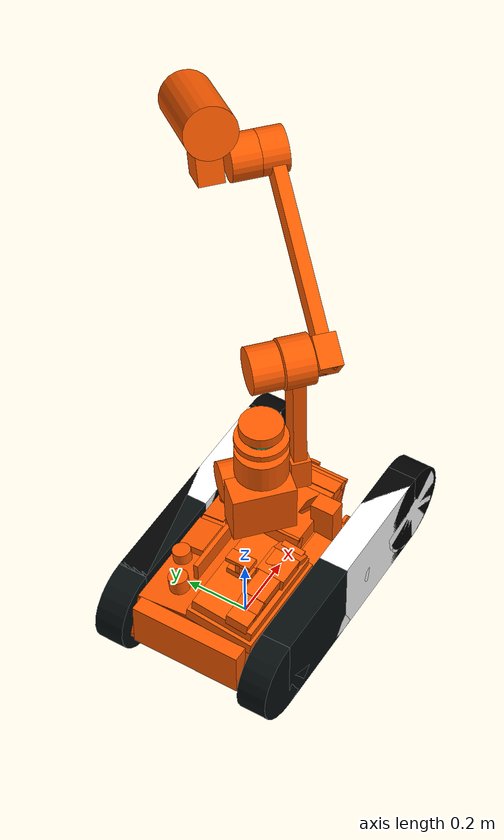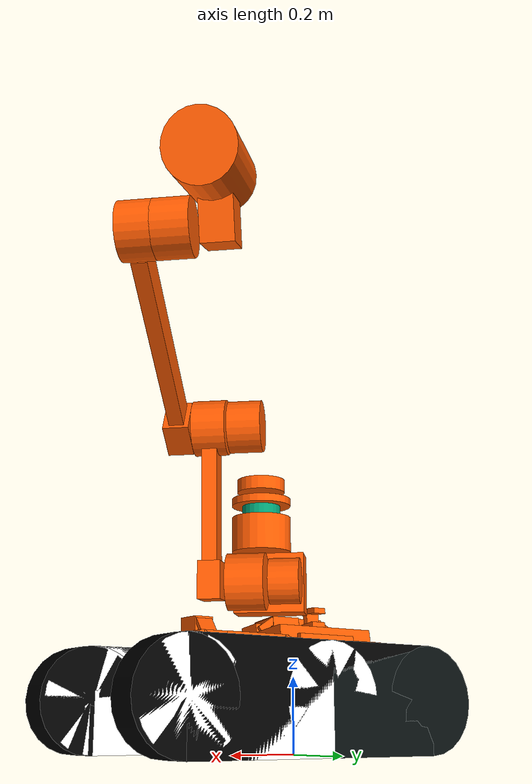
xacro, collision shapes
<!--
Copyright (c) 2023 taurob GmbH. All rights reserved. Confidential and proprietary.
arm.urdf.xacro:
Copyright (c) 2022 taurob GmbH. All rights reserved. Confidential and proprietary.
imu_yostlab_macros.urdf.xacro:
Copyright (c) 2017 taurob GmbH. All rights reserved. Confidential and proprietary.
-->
<?xml version="1.0"?>

<robot name="taurob_inspector_longarm" xmlns:xacro="http://www.ros.org/wiki/xacro">

  <!-- [BEGIN] === Arguments === -->
    <xacro:arg name="use_gpu" default="false"/>  <!-- [INFO]: Set use_gpu to false if running on VMWare -->
    <xacro:arg name="use_lidar" default="true" />  <!-- [INFO]: fixed/rotate/placement_rot (test only!) -->
    <xacro:arg name="operation_mode" default="physical" />  <!-- [INFO]: Simulation/Physical -->
    <xacro:arg name="use_imu" default="true" />
    <xacro:arg name="use_cameras" default="true" />
    <xacro:arg name="collision_model" default="simple" />
    <xacro:arg name="odomTopic" default="odom" />
    <xacro:arg name="publishTF" default="1" />
    <xacro:arg name="velodyneTopic" default="/velodyne_points" />
    <xacro:arg name="velodyneHz" default="20" />
    <xacro:arg name="use_gpu" default="false" />

    <!-- [BEGIN] === Properties === -->
    <xacro:property name="use_gpu" value="$(arg use_gpu)" />
    <xacro:property name="use_lidar" value="$(arg use_lidar)" />
    <xacro:property name="operation_mode" value="$(arg operation_mode)" />
    <xacro:property name="use_imu" value="$(arg use_imu)" />
    <xacro:property name="use_cameras" value="$(arg use_cameras)" />
    <xacro:property name="collision_model" value="$(arg collision_model)" />
    <xacro:property name="odomTopic" value="$(arg odomTopic)" />
    <xacro:property name="velodyneTopic" value="$(arg velodyneTopic)" />
    <xacro:property name="velodyneHz" value="$(arg velodyneHz)" />
    <xacro:property name="publishTF" value="$(arg publishTF)" />
    <xacro:property name="M_PI" value="3.14159" />

    <!-- [BEGIN] === Include section === -->
    <xacro:include filename="$(find taurob_robots_description)/urdf/inspector_longarm/chassis.urdf.xacro"/>
    <xacro:include filename="$(find taurob_robots_description)/urdf/inspector_longarm/arm.urdf.xacro"/>
    <xacro:include filename="$(find taurob_robots_description)/urdf/inspector_longarm/sensors.xacro"/>
    <xacro:include filename="$(find hector_xacro_tools)/urdf/inertia_tensors.urdf.xacro"/>

    <!-- [BEGIN] === Link: A Link to base all other links on. === -->
    <link name="base_link">
      <origin xyz="0 0.0 0.0" rpy="0 0 0"/>
    </link>

    <!-- [BEGIN] === Insert: Chassis === -->
    <xacro:inspector_longarm_chassis
      parent_link  = "base_link"
      flipper_type = "$(optenv ROBOT_MODEL_FLIPPER_TYPE regular)">
    </xacro:inspector_longarm_chassis>

    <!-- [BEGIN] === Insert: Arm === -->
    <xacro:inspector_longarm
      collision_model = "$(arg collision_model)">
    </xacro:inspector_longarm>

    <!-- [BEGIN] === Insert: Sensors === -->
    <xacro:inspector_longarm_sensors
      operation_mode = "$(arg operation_mode)"
      use_cameras = "$(arg use_cameras)"
      use_lidar = "$(arg use_lidar)"
      use_imu = "$(arg use_imu)"
      odomTopic = "$(arg odomTopic)"
      publishTF = "$(arg publishTF)"
      velodyneTopic = "$(arg velodyneTopic)"
      velodyneHz = "$(arg velodyneHz)"
      use_gpu = "$(arg use_gpu)">
    </xacro:inspector_longarm_sensors>

</robot>

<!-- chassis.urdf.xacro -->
<robot name="taurob_inspector_longarm"
    xmlns:xacro="http://ros.org/wiki/xacro">

    <!-- [BEGIN] === Macro === -->
    <xacro:macro name="inspector_longarm_chassis" params="parent_link flipper_type">

        <!-- [BEGIN] === Params: Chassis Dimensions === -->
        <xacro:property name="inspector_chassis_x" value="0.66" />
        <xacro:property name="inspector_chassis_y" value="0.5" />
        <xacro:property name="inspector_chassis_z" value="0.2" />

        <!-- [BEGIN] === Params: Flippers === -->
        <xacro:property name="flipper_upper_shortening_x" value="0.0" />
        <xacro:property name="flipper_model" value="${flipper_type}" />

        <xacro:if value="${flipper_model == 'regular'}">
            <xacro:property name="track_length" value="1.0" /> <!-- [INFO]: Actual length of the mounted tracks measured front to back of the robot. -->
            <xacro:property name="flipper_offset_x" value="0.03" />
        </xacro:if>

        <xacro:if value="${flipper_model == 'elongated'}">
            <xacro:property name="track_length" value="1.1" /> <!-- [INFO]: Actual length of the mounted tracks measured front to back of the robot. -->
            <xacro:property name="flipper_offset_x" value="0.092" />
        </xacro:if>

        <!-- [BEGIN] === Params: Tracks === -->
        <xacro:property name="track_wheel_radius" value="0.137"/> <!-- [INFO]: Radius of the track wheels. -->
        <xacro:property name="track_centre_wheel_x" value="0.321" /> <!-- [INFO]: Position in x of the wheel in the middle. -->
        <xacro:property name="track_width" value="0.0925"/> <!-- [INFO]: Actual width of the tracks -->
        <xacro:property name="track_offset_x" value="0.1605"/>
        <xacro:property name="track_offset_y" value="0.2418"/> <!-- [INFO]: Overall width of the tracks + robot_base amount to 0.576; So the center of the tracks in y from the centre of the robot would be = (0.576 - 0.0925)/2 = 0.2418 -->

        <!-- [BEGIN] === Joint: Chassis === -->
        <joint name="chassis_joint" type="fixed">
            <origin xyz="-0.225 0.0 ${track_wheel_radius}" rpy="0 0 0"/> <!-- [TODO]: set x and y to the diagonal centre of the chassis. -->
            <parent link="${parent_link}"/>
            <child link="chassis_link"/>
        </joint>

        <!-- [BEGIN] === Link: Chassis === -->
        <link name="chassis_link">
            <xacro:inertial_cuboid_with_pose mass="60" x_length="${inspector_chassis_x*0.66}" y_length="${inspector_chassis_y}" z_length="${inspector_chassis_z}">
                <origin xyz="0.5 0.0 0.0" rpy="0 0 0" />
            </xacro:inertial_cuboid_with_pose>

            <visual>
                <origin xyz="0.0 0.0 0.0" rpy="0 0 0" />
                <geometry>
                    <mesh filename="package://taurob_robots_description/meshes/chassis_inspector_longarm/chassis_inspector_longarm.dae"/>
                </geometry>
                <material name="orange">
                    <color rgba="1.0 0.3568627450980392 0.0 1.0"/>
                </material>
            </visual>

            <!-- [GEOMETRIES]: [Chassis] - Box -->
            <collision>
                <origin xyz="0.225 0 0.025" rpy="0 0 0"/>
                    <geometry>
                        <box size="0.54 0.44 0.14"/>
                    </geometry>
            </collision>

            <!-- [GEOMETRIES]: [Chassis Hatch] - Rear -->
            <collision>
             <origin xyz="-0.04485 0 0.025" rpy="0 0.349 0" />
                <geometry>
                    <box size="0.0525 0.44 0.130"/>
                </geometry>
            </collision>

            <!-- [GEOMETRIES]: [Chassis Cylinder] - Rear -->
             <collision>
             <origin xyz="-0.081 0 -0.033" rpy="${M_PI/2} 0 0" />
                <geometry>
                    <cylinder length="0.44" radius="0.0125"/>
                </geometry>
            </collision>

            <!-- [GEOMETRIES]: [Chassis Docking] - Rear, Left -->
            <collision>
             <origin xyz="-0.08 0 0.045" rpy="0 0 0" />
                <geometry>
                    <box size="0.05 0.35 0.15"/>
                </geometry>
            </collision>

            <!-- GEOMETRIES]: [Chassis Fix-up] - Rear -->
            <collision>
             <origin xyz="-0.057 0 -0.035" rpy="0 0 0" />
                <geometry>
                    <box size="0.05 0.44 0.02"/>
                </geometry>
            </collision>

            <!-- [GEOMETRIES]: [Chassis Hatch] - Top, Right -->
             <collision>
             <origin xyz="0.225 -0.11 0.100" rpy="${7*M_PI/180} 0 0" />
                <geometry>
                    <box size="0.54 0.22 0.02"/>
                </geometry>
            </collision>

            <!-- [GEOMETRIES]: [Chassis Cylinder] - Top, Middle -->
             <collision>
             <origin xyz="0.225 0 0.1135" rpy="0 ${M_PI/2} 0" />
                <geometry>
                    <cylinder length="0.54" radius="0.01"/>
                </geometry>
            </collision>

            <!-- [GEOMETRIES]: [Chassis Fix-up] - Top, Middle -->
             <collision>
                <origin xyz="0.225 0 0.100" rpy="0 0 0" />
                <geometry>
                    <box size="0.54 0.22 0.02"/>
                </geometry>
            </collision>

            <!-- [GEOMETRIES]: [Chassis Hatch] - Top, left -->
             <collision>
             <origin xyz="0.225 0.11 0.100" rpy="-${6.8*M_PI/180} 0 0" />
                <geometry>
                    <box size="0.54 0.22 0.02"/>
                </geometry>
            </collision>

            <!-- [GEOMETRIES]: [Battery Compartment Box] - Center -->
            <collision>
                <origin xyz="0.425 0 0.0575" rpy="0 0 0" />
                    <geometry>
                        <box size="0.18 0.24 0.209"/>
                    </geometry>
            </collision>

            <!-- [GEOMETRIES]: [Battery Compartment Hatch] - Front -->
            <collision>
             <origin xyz="0.530 0 0.0575" rpy="0 0.349 0" />
                <geometry>
                    <box size="0.064 0.24 0.20"/>
                </geometry>
            </collision>

            <!-- [GEOMETRIES]: [Battery Compartment Hatch] - Back -->
            <collision>
             <origin xyz="0.33 0 0.127" rpy="0 0.349 0" />
                <geometry>
                    <box size="0.03 0.24 0.06"/>
                </geometry>
            </collision>

            <!-- [GEOMETRIES]: [Battery Compartment Cylinder] - Back, Top -->
             <collision>
             <origin xyz="0.3325 0 0.155" rpy="${M_PI/2} 0 0" />
                <geometry>
                    <cylinder length="0.24" radius="0.0075"/>
                </geometry>
            </collision>

            <!-- [GEOMETRIES]: [Battery Compartment Cylinder] - Front, Bottom -->
             <collision>
             <origin xyz="0.515 0 -0.035" rpy="${M_PI/2} 0 0" />
                <geometry>
                    <cylinder length="0.24" radius="0.015"/>
                </geometry>
            </collision>

             <!-- [GEOMETRIES]: [Battery Compartment Cylinder] - Front, Top -->
             <collision>
             <origin xyz="0.585 0 0.147" rpy="${M_PI/2} 0 0" />
                <geometry>
                    <cylinder length="0.24" radius="0.015"/>
                </geometry>
            </collision>

            <!-- [GEOMETRIES]: [Battery Compartment Fix-ups] - Front, Top -->
            <collision>
                <origin xyz="0.515 0 0.135" rpy="0 0 0" />
                <geometry>
                    <box size="0.135 0.24 0.053"/>
                </geometry>
            </collision>

            <!-- [GEOMETRIES]: [Battery Lid] -->
            <collision>
             <origin xyz="0.575 0 0.056" rpy="0 0.35 0" />
                <geometry>
                    <box size="0.018 0.23 0.18"/>
                </geometry>
            </collision>

            <!-- [GEOMETRIES]: [Battery Lid Cylinder] -->
            <collision>
                <origin xyz="0.605 0 0.145" rpy="${M_PI/2} 0 0"/>
                <geometry>
                    <cylinder length="0.24" radius="0.008"/>
                </geometry>
            </collision>

            <!-- [GEOMETRIES]: [Battery Lid Lock] - Top  -->
            <collision>
             <origin xyz="0.600 0 0.081" rpy="0 0.35 0" />
                <geometry>
                    <box size="0.013 0.032 0.14"/>
                </geometry>
            </collision>

           <!-- [GEOMETRIES]: [Battery Lid Lock] - Bottom, Right  -->
           <collision>
             <origin xyz="0.574 0.04 0.01" rpy="0.82 0.35 0" />
                <geometry>
                    <box size="0.013 0.032 0.13"/>
                </geometry>
            </collision>

           <!-- [GEOMETRIES]: [Battery Lid Lock] - Bottom, Left  -->
           <collision>
             <origin xyz="0.574 -0.041 0.01" rpy="-0.82 0.35 0" />
                <geometry>
                    <box size="0.013 0.032 0.13"/>
                </geometry>
            </collision>

            <!-- [GEOMETRIES]: [TTC Controller Plate] - Top  -->
            <collision>
                <origin xyz="0.115 -0.087 0.165" rpy="${7*M_PI/180} 0 0"/>
                <geometry>
                    <box size="0.318 0.197 0.05"/>
                </geometry>
            </collision>

            <!-- [GEOMETRIES]: [TTC Controller Plate] - Bottom -->
            <collision>
                <origin xyz="0.115 -0.084 0.135" rpy="${7*M_PI/180} 0 0"/>
                <geometry>
                    <box size="0.3415 0.215 0.04"/>
                </geometry>
            </collision>

            <!-- [GEOMETRIES]: [Gas Sensor] Top Holder -->
            <collision>
                <origin xyz="0.175 -0.141 0.211" rpy="${7*M_PI/180} 0 0"/>
                <geometry>
                    <box size="0.09 0.09 0.04"/>
                </geometry>
            </collision>

             <!-- [GEOMETRIES]: [Gas Sensor] - Sensor Body -->
            <collision>
                <origin xyz="0.13 -0.141 0.211" rpy="${7*M_PI/180} 0 0"/>
                <geometry>
                    <box size="0.18 0.07 0.04"/>
                </geometry>
            </collision>

            <!-- [GEOMETRIES]: [Gas Sensor Holder] - Base -->
            <collision>
                <origin xyz="0.115 -0.138 0.19" rpy="${7*M_PI/180} 0 0"/>
                <geometry>
                    <box size="0.318 0.07 0.0375"/>
                </geometry>
            </collision>

            <!-- [GEOMETRIES]: [Gas Sensor Holder] - Hatch, Back -->
            <collision>
             <origin xyz="0.02 -0.141 0.205" rpy="0.15 -0.55 -0.08" />
                <geometry>
                    <box size="0.06 0.07 0.02"/>
                </geometry>
            </collision>

             <!-- [GEOMETRIES]: [Gas Sensor Holder] - Hatch, Front -->
            <collision>
             <origin xyz="0.24 -0.141 0.205" rpy="0.15 0.55 0.08" />
                <geometry>
                    <box size="0.06 0.09 0.02"/>
                </geometry>
            </collision>

             <!-- [GEOMETRIES]: [LED Holder Plate] -->
            <collision>
             <origin xyz="0.397 0.165 0.1" rpy="-${7*M_PI/180} 0 0" />
                <geometry>
                    <box size="0.18 0.08 0.015"/>
                </geometry>
            </collision>

             <!-- [GEOMETRIES]: [LED Cylinder] -->
            <collision>
             <origin xyz="0.395 0.165 0.105" rpy="-${7*M_PI/180} 0 0" />
                <geometry>
                    <cylinder length="0.02" radius="0.025"/>
                </geometry>
            </collision>

             <!-- [GEOMETRIES]: [Pressure Sensor] - Cylinder -->
            <collision>
             <origin xyz="0.136 0.16 0.12" rpy="-${7*M_PI/180} 0 0" />
                <geometry>
                    <cylinder length="0.04" radius="0.028"/>
                </geometry>
            </collision>

             <!-- [GEOMETRIES]: [Buttons Hatch] - Top, Left -->
             <collision>
             <origin xyz="0.22 0.145 0.115" rpy="-${7*M_PI/180} 0 0" />
                <geometry>
                    <box size="0.11 0.08 0.035"/>
                </geometry>
            </collision>

             <!-- [GEOMETRIES]: [Emergency Stop Button] - Cylinder -->
            <collision>
             <origin xyz="0.037 0.107 0.13" rpy="-${7*M_PI/180} 0 0" />
                <geometry>
                    <cylinder length="0.055" radius="0.03"/>
                </geometry>
            </collision>

            <!-- [GEOMETRIES]: [Metal Rings] - Cylinder, Left -->
            <collision>
             <origin xyz="0.515 0.17 0.082" rpy="-${M_PI/2} 0 0" />
                <geometry>
                    <cylinder length="0.01" radius="0.02"/>
                </geometry>
            </collision>

            <!-- [GEOMETRIES]: [Metal Rings] - Cylinder, Right -->
            <collision>
             <origin xyz="0.515 -0.17 0.082" rpy="-${M_PI/2} 0 0" />
                <geometry>
                    <cylinder length="0.01" radius="0.02"/>
                </geometry>
            </collision>

            <!-- [GEOMETRIES]: [External Charging Plate] -->
            <collision>
             <origin xyz="0.503 -0.163 0.013" rpy="0 ${M_PI/2} 0" />
                <geometry>
                    <box size="0.086 0.055 0.02"/>
                </geometry>
            </collision>

            <!-- [GEOMETRIES]: [Debug Cable Housing] -->
            <collision>
             <origin xyz="0.545 0.133 0.13" rpy="0 0 0" />
                <geometry>
                    <box size="0.05 0.03 0.04"/>
                </geometry>
            </collision>

            <!-- [GEOMETRIES]: [Arm rest - B] -->
            <collision>
                <origin xyz="0.443 -0.145 0.159" rpy="0 0 0" />
                <geometry>
                    <box size="0.055 0.075 0.128" />
                </geometry>
            </collision>

            <!-- [GEOMETRIES]: [Arm rest - B] - Slope -->
            <collision>
                <origin xyz="0.443 -0.085 0.18" rpy="0.65 0 0" />
                <geometry>
                    <box size="0.05 0.01 0.09" />
                </geometry>
            </collision>

            <!-- [GEOMETRIES]: [Arm Rest - B] - Hatch, Top, Right -->
             <collision>
             <origin xyz="0.397 -0.165 0.1" rpy="${7*M_PI/180} 0 0" />
                <geometry>
                    <box size="0.18 0.08 0.015"/>
                </geometry>
            </collision>

            <!-- [GEOMETRIES]: [Arm Rest - A] -->
            <collision>
                <origin xyz="0.12 -0.053 0.202" rpy="${7*M_PI/180} 0 0" />
                <geometry>
                    <box size="0.045 0.072 0.025" />
                </geometry>
            </collision>

            <!-- [GEOMETRIES]: [Arm Rest - A] - Bottom plate -->
            <collision>
                <origin xyz="0.12 -0.053 0.202" rpy="${7*M_PI/180} 0 0" />
                <geometry>
                    <box size="0.045 0.072 0.025" />
                </geometry>
            </collision>

            <!-- [GEOMETRIES]: [Arm Rest - A] - Middle horizontal plate -->
            <collision>
                <origin xyz="0.12 -0.053 0.25" rpy="0 0 0" />
                <geometry>
                    <box size="0.04 0.08 0.015" />
                </geometry>
            </collision>

            <!-- [GEOMETRIES]: [Arm Rest - A] - Middle vertical plate -->
            <collision>
                <origin xyz="0.12 -0.053 0.23" rpy="${M_PI/2} 0 0" />
                <geometry>
                    <box size="0.041 0.035 0.015" />
                </geometry>
            </collision>

            <!-- [GEOMETRIES]: [Antenna] -->
            <collision>
             <origin xyz="0.175 0.08 0.1" rpy="${M_PI/2} 0 0" />
                <geometry>
                    <box size="0.18 0.145 0.015"/>
                </geometry>
            </collision>
        </link>

        <!-- [BEGIN] ===  Macro: Tracks === -->
        <xacro:include filename="$(find taurob_robots_description)/urdf/inspector_longarm/tracks.urdf.xacro"/>
        <xacro:inspector_tracks
            track_length="${track_length}"
            flipper_offset_x="${flipper_offset_x}"
            flipper_upper_shortening_x="${flipper_upper_shortening_x}"
            track_wheel_radius="${track_wheel_radius}"
            track_width="${track_width}"
            track_offset_x="${track_offset_x}"
            track_offset_y="${track_offset_y}"
            track_centre_wheel_x="${track_centre_wheel_x}">
            <origin xyz="0 0 0" rpy="0 0 0"/>
        </xacro:inspector_tracks>

        <!-- [BEGIN] === Joint: arm_flange_joint === -->
        <joint name="arm_flange_joint" type="fixed">
            <origin xyz="0.401 0.037 0.227" rpy="0 0 0"/>
            <parent link="chassis_link"/>
            <child link="arm_flange_link"/>
        </joint>

        <!-- [BEGIN] === Link: arm_flange_link === -->
        <link name="arm_flange_link">
            <origin xyz="0 0 0" rpy="0 0 0" />
            <xacro:inertial_cuboid_with_pose mass="0.1" x_length="0.1" y_length="0.1" z_length="0.1">
                <origin xyz="0.0 0.0 0.0" rpy="0.0 0.0 0.0" />
            </xacro:inertial_cuboid_with_pose>
        </link>

        <!-- [BEGIN] ===  Transmission section: Needed for ros_control === -->
        <transmission name="flipper_joint_1_joint_transmssion">
            <type>transmission_interface/SimpleTransmission</type>
            <joint name="flipper_joint_1">
                <hardwareInterface>hardware_interface/PositionJointInterface</hardwareInterface>
            </joint>
            <actuator name="flipper_joint_1_motor">
                <hardwareInterface>hardware_interface/PositionJointInterface</hardwareInterface>
                <mechanicalReduction>1</mechanicalReduction>
            </actuator>
        </transmission>

        <transmission name="flipper_joint_joint_transmssion">
            <type>transmission_interface/SimpleTransmission</type>
            <joint name="flipper_joint">
                <hardwareInterface>hardware_interface/PositionJointInterface</hardwareInterface>
            </joint>
            <actuator name="flipper_joint_motor">
                <hardwareInterface>hardware_interface/PositionJointInterface</hardwareInterface>
                <mechanicalReduction>1</mechanicalReduction>
            </actuator>
        </transmission>

    </xacro:macro>

</robot>

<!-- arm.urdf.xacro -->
<robot name="taurob_inspector_longarm" xmlns:xacro="http://ros.org/wiki/xacro">

    <!-- [BEGIN] === Macro: Inspector Longarm === -->
    <xacro:macro name="inspector_longarm" params="collision_model">

        <!-- [BEGIN] === Joint: Arm Joint 1 === -->
        <joint name="arm_joint_1" type="revolute">
            <origin xyz="0 0 0" rpy="0 0 -2.00713"/>
            <axis xyz="0 0 1"/>
            <limit lower="0.020" upper="5.655" effort="100" velocity="0.2"/>
            <parent link="arm_flange_link"/>
            <child link="arm_link_1"/>
        </joint>

        <!-- [BEGIN] === Link: arm_link_1 === -->
        <link name="arm_link_1">
            <xacro:inertial_cuboid_with_pose mass="1.786" x_length="0.20" y_length="0.20" z_length="0.20">
                <origin xyz="0.0 0.0 0.0" rpy="0 0 0"/>
            </xacro:inertial_cuboid_with_pose>

            <visual>
                <origin xyz="0 0 0" rpy="0 0 0"/>
                <geometry>
                    <mesh filename="package://taurob_robots_description/meshes/longarm_inspector/sensor_tower.dae"/>
                </geometry>
                <material name="orange">
                    <color rgba="1.0 0.3568627450980392 0.0 1.0"/>
                </material>
            </visual>

            <xacro:if value="${collision_model  == 'simple'}">
                <collision>
                    <origin xyz="-0.115 0.048 0.082" rpy="0 0 ${M_PI/2}"/>
                    <geometry>
                        <box size="0.19 0.095 0.16"/>
                    </geometry>
                </collision>

                <collision>
                    <origin xyz="0 0.1 0.075" rpy="${M_PI/2} 0 0"/>
                    <geometry>
                       <cylinder radius="0.06" length="0.08"/>
                    </geometry>
                </collision>

                <collision>
                    <origin xyz="0 0.00 0.075" rpy="${M_PI/2} 0 0"/>
                    <geometry>
                       <cylinder radius="0.075" length="0.1"/>
                    </geometry>
                </collision>

                <collision>
                    <origin xyz="-0.0625 0.03 0.21" rpy="0 0 ${M_PI/2}"/>
                    <geometry>
                        <cylinder radius="0.08" length="0.095"/>
                    </geometry>
                </collision>

                <collision>
                    <origin xyz="-0.0625 0.03 0.30" rpy="0 0 ${M_PI/2}"/>
                    <geometry>
                        <cylinder radius="0.08" length="0.02"/>
                    </geometry>
                </collision>

                <collision>
                    <origin xyz="-0.06 0.03 0.345" rpy="0 0 ${M_PI/2}"/>
                    <geometry>
                        <cylinder radius="0.065" length="0.035"/>
                    </geometry>
                </collision>
            </xacro:if>

            <xacro:if value="${collision_model  == 'complex'}">
                <collision>
                    <origin xyz="0.0 0.0 0.0" rpy="0 0 0"/>
                    <geometry>
                        <mesh filename="package://taurob_robots_description/meshes/longarm_inspector/sensor_tower_collision.dae"/>
                    </geometry>
                </collision>
            </xacro:if>
        </link>

        <!-- [BEGIN] === Joint: Arm Joint 2 === -->
        <joint name="arm_joint_2" type="revolute">
            <origin xyz="0 -0.0592 0.079" rpy="${-M_PI/2} -0.20944 ${M_PI}"/>
            <axis xyz="0 0 1"/>
            <limit lower="0.020" upper="3.420843" effort="100" velocity="0.2"/>
            <parent link="arm_link_1"/>
            <child link="arm_link_2"/>
            <dynamics damping="0.7" />
        </joint>

        <!-- [BEGIN] === Link: arm_link_2 === -->
        <link name="arm_link_2">
            <xacro:inertial_cuboid_with_pose mass="3.667" x_length="0.543" y_length="0.147" z_length="0.194">
                <origin xyz="-0.25 0 0.035" rpy="0 0 0"/>
            </xacro:inertial_cuboid_with_pose>
            <visual>
                <origin xyz="0 0 0" rpy="0 0 0"/>
                <geometry>
                    <mesh filename="package://taurob_robots_description/meshes/longarm_inspector/j3_arm_link_1.dae"/>
                </geometry>
                <material name="orange">
                    <color rgba="1.0 0.3568627450980392 0.0 1.0"/>
                </material>
            </visual>

            <xacro:if value="${collision_model  == 'simple'}">
                <collision>
                    <origin xyz="-0.2 0 0.035" rpy="0 0 0" />
                    <geometry>
                        <box size="0.3 0.08 0.04" />
                    </geometry>
                </collision>

                <collision>
                    <origin xyz="0 0 0.035" rpy="0 0 0" />
                    <geometry>
                        <box size="0.1 0.1 0.06" />
                    </geometry>
                </collision>

                <collision>
                    <origin xyz="-0.415 0 -0.06" rpy="0 0 0" />
                    <geometry>
                       <cylinder radius="0.07" length="0.09"/>
                    </geometry>
                </collision>

                <collision>
                    <origin xyz="-0.415 0 0.035" rpy="0 0 0"/>
                    <geometry>
                       <cylinder radius="0.075" length="0.09"/>
                    </geometry>
                </collision>
            </xacro:if>

            <xacro:if value="${collision_model  == 'complex'}">
                <collision>
                    <origin xyz="0.0 0.0 0.0" rpy="0 0 0"/>
                    <geometry>
                        <mesh filename="package://taurob_robots_description/meshes/longarm_inspector/j3_arm_link_1_collision.dae"/>
                    </geometry>
                </collision>
            </xacro:if>
        </link>

        <!-- [BEGIN] === Joint: Arm Joint 3 === -->
        <joint name="arm_joint_3" type="revolute">
            <origin xyz="-0.4167 0 0.0902" rpy="0 0 -0.239626"/>
            <axis xyz="0 0 1"/>
            <limit lower="0.018" upper="4.79966" effort="100" velocity="0.2"/>
            <parent link="arm_link_2"/>
            <child link="arm_link_3"/>
            <dynamics damping="0.7" />
        </joint>

        <!-- [BEGIN] === Link: arm_link_3 === -->
        <link name="arm_link_3">
            <xacro:inertial_cuboid_with_pose mass="3.667" x_length="0.727" y_length="0.125" z_length="0.181">
                <origin xyz="0.32 0 0.03" rpy="0 0 0"/>
            </xacro:inertial_cuboid_with_pose>
            <visual>
                <origin xyz="0 0 0" rpy="0 0 0"/>
                <geometry>
                    <mesh filename="package://taurob_robots_description/meshes/longarm_inspector/j4_arm_link_2.dae"/>
                </geometry>
                <material name="orange">
                    <color rgba="1.0 0.3568627450980392 0.0 1.0"/>
                </material>
            </visual>

            <xacro:if value="${collision_model  == 'simple'}">
                <collision>
                    <origin xyz="0.25 0 0.03" rpy="0 0 0" />
                    <geometry>
                        <box size="0.6 0.08 0.04" />
                    </geometry>
                </collision>

                <collision>
                    <origin xyz="0 0 0.032" rpy="0 0 0" />
                    <geometry>
                        <box size="0.1 0.1 0.07" />
                    </geometry>
                </collision>

                <collision>
                    <origin xyz="0.61 0 0.025" rpy="0 0 0"/>
                    <geometry>
                       <cylinder radius="0.07" length="0.082"/>
                    </geometry>
                </collision>

                <collision>
                    <origin xyz="0.61 0 -0.06" rpy="0 0 0" />
                    <geometry>
                        <cylinder radius="0.07" length="0.09"/>
                    </geometry>
                </collision>
            </xacro:if>

            <xacro:if value="${collision_model  == 'complex'}">
                <collision>
                    <origin xyz="0.0 0.0 0.0" rpy="0 0 0"/>
                    <geometry>
                        <mesh filename="package://taurob_robots_description/meshes/longarm_inspector/j4_arm_link_2_collision.dae"/>
                    </geometry>
                </collision>
            </xacro:if>
        </link>

        <!-- [BEGIN] === Joint: Arm Joint 4 === -->
        <joint name="arm_joint_4" type="revolute">
            <origin xyz="0.611 0.0 -0.116" rpy="0 ${M_PI} -0.0349066"/>
            <axis xyz="0 0 1"/>
            <limit lower="0.018" upper="4.79966" effort="100" velocity="0.18"/>
            <parent link="arm_link_3"/>
            <child link="arm_link_4"/>
            <dynamics damping="0.7"/>
        </joint>

        <!-- [BEGIN] === Link: arm_link_4 === -->
        <link name="arm_link_4">
            <xacro:inertial_cuboid_with_pose mass="3.667" x_length="0.257" y_length="0.299" z_length="0.162">
                <origin xyz="0.1 0.05 0.05" rpy="0 0 0"/>
            </xacro:inertial_cuboid_with_pose>
            <visual>
                <origin xyz="0 0 0" rpy="0 0 0"/>
                <geometry>
                    <mesh filename="package://taurob_robots_description/meshes/longarm_inspector/sensor_head.dae"/>
                </geometry>
                <material name="orange">
                    <color rgba="1.0 0.3568627450980392 0.0 1.0"/>
                </material>
            </visual>

            <xacro:if value="${collision_model  == 'simple'}">
                <collision>
                    <origin xyz="0.012 0 0.05" rpy="${M_PI/2} 0 0" />
                    <geometry>
                        <box size="0.12 0.08 0.11" />
                    </geometry>
                </collision>
                <collision>
                    <origin xyz="0.125 0.055 0.045" rpy="${M_PI/2} 0 0" />
                    <geometry>
                        <cylinder radius="0.082" length="0.295"/>
                    </geometry>
                </collision>
            </xacro:if>

            <xacro:if value="${collision_model  == 'complex'}">
                <collision>
                    <origin xyz="0.0 0.0 0.0" rpy="0 0 0"/>
                    <geometry>
                        <mesh filename="package://taurob_robots_description/meshes/longarm_inspector/sensor_head_collision.dae"/>
                    </geometry>
                </collision>
            </xacro:if>
        </link>

        <!-- [BEGIN] ===  Arm transmission section. Needed for ros_control. === -->
         <transmission name="arm_joint_1_joint_transmssion">
            <type>transmission_interface/SimpleTransmission</type>
            <joint name="arm_joint_1">
                <hardwareInterface>hardware_interface/PositionJointInterface</hardwareInterface>
            </joint>
            <actuator name="arm_joint_1_motor">
                <hardwareInterface>hardware_interface/PositionJointInterface</hardwareInterface>
                <mechanicalReduction>1</mechanicalReduction>
            </actuator>
        </transmission>

        <transmission name="arm_joint_2_joint_transmssion">
            <type>transmission_interface/SimpleTransmission</type>
            <joint name="arm_joint_2">
                <hardwareInterface>hardware_interface/PositionJointInterface</hardwareInterface>
            </joint>
            <actuator name="arm_joint_2_motor">
                <hardwareInterface>hardware_interface/PositionJointInterface</hardwareInterface>
                <mechanicalReduction>1</mechanicalReduction>
            </actuator>
        </transmission>

        <transmission name="arm_joint_3_joint_transmssion">
            <type>transmission_interface/SimpleTransmission</type>
            <joint name="arm_joint_3">
                <hardwareInterface>hardware_interface/PositionJointInterface</hardwareInterface>
            </joint>
            <actuator name="arm_joint_3_motor">
                <hardwareInterface>hardware_interface/PositionJointInterface</hardwareInterface>
                <mechanicalReduction>1</mechanicalReduction>
            </actuator>
        </transmission>

        <transmission name="arm_joint_4_joint_transmssion">
            <type>transmission_interface/SimpleTransmission</type>
            <joint name="arm_joint_4">
                <hardwareInterface>hardware_interface/PositionJointInterface</hardwareInterface>
            </joint>
            <actuator name="arm_joint_4_motor">
                <hardwareInterface>hardware_interface/PositionJointInterface</hardwareInterface>
                <mechanicalReduction>1</mechanicalReduction>
            </actuator>
        </transmission>
    </xacro:macro>
</robot>

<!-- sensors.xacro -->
<robot name="taurob_inspector_longarm" xmlns:xacro="http://ros.org/wiki/xacro">

    <!-- [BEGIN] === Macro: Sensors: Inspector Longarm === -->
    <xacro:macro name="inspector_longarm_sensors" params="operation_mode use_cameras use_lidar use_imu odomTopic publishTF velodyneTopic velodyneHz use_gpu">

            <!-- [BEGIN] === Physical Mode === -->
            <xacro:include filename="$(find velodyne_description)/urdf/VLP-16.urdf.xacro"/>
            <xacro:include filename="$(find taurob_robots_description)/urdf/imu_yostlab_macros.urdf.xacro"/>
            <xacro:include filename="$(find taurob_robots_description)/urdf/inspector_camera_assembly.xacro"/>

            <!-- [ADD] === Sensor: LIDAR === -->
            <xacro:if value="${use_lidar}">
                <xacro:VLP-16 parent="arm_link_1" name="velodyne" topic="$(arg velodyneTopic)" hz="$(arg velodyneHz)" samples="1024" gpu="${use_gpu}" min_range="0.45" collision_range="0.06">
                    <origin xyz="-0.0625 0.0305 0.239" rpy="0 0 0" />
                </xacro:VLP-16>
            </xacro:if>

            <!-- [ADD] === Sensor: IMU === -->
            <xacro:if value="${use_imu}">
                <xacro:imu_yostlab_macro parent="chassis_link">
                    <origin xyz="0.424 0.007 -0.03199" rpy="0 0 0"/>
                </xacro:imu_yostlab_macro>
            </xacro:if>

            <!-- [ADD] === Sensor: Camera Sensortower === -->
            <xacro:sensortower_camera_assembly
                parent_link="arm_link_1"
                front_rotation="$(optenv ROBOT_MODEL_CAMERA_SENSORTOWER_FRONT_OPTICAL_ROTATION 0.0)"
                left_rotation="$(optenv ROBOT_MODEL_CAMERA_SENSORTOWER_LEFT_OPTICAL_ROTATION 0.0)"
                back_rotation="$(optenv ROBOT_MODEL_CAMERA_SENSORTOWER_BACK_OPTICAL_ROTATION 0.0)"
                right_rotation="$(optenv ROBOT_MODEL_CAMERA_SENSORTOWER_RIGHT_OPTICAL_ROTATION 0.0)">
                <origin xyz="-0.059 0.0305 0.196" rpy="0 0 0"/>
            </xacro:sensortower_camera_assembly>
            <!-- [ADD] === Sensor: Camera Sensorhead === -->
            <xacro:sensorhead_camera_assembly
                parent_link="arm_link_4"
                rgb_rotation="$(optenv ROBOT_MODEL_CAMERA_SENSORHEAD_RGB_OPTICAL_ROTATION 0.0)"
                thermal_rotation="$(optenv ROBOT_MODEL_CAMERA_SENSORHEAD_THERMAL_OPTICAL_ROTATION 0.0)">
                <origin xyz="0.16 0.189 0.043" rpy="${-90 * M_PI / 180} 0 ${90 * M_PI / 180}"/>
            </xacro:sensorhead_camera_assembly>

        <!-- [INCLUDE] === Macro: Sensors: Inspector Longarm === -->
        <xacro:if value="${operation_mode  == 'simulation'}">
            <xacro:include filename="$(find taurob_robots_description)/urdf/taurob_camera.xacro"/>
            <xacro:include filename="$(find taurob_robots_description)/urdf/inspector_longarm/simulation.gazebo" />
            <xacro:include filename="$(find taurob_robots_description)/urdf/taurob_camera.gazebo" />
            <xacro:include filename="$(find taurob_robots_description)/urdf/taurob_logical_camera.gazebo" />

            <xacro:inspector_longarm_ros_control_macro>
                <robotNamespace></robotNamespace>
            </xacro:inspector_longarm_ros_control_macro>

            <!-- Force based move plugin-->
            <xacro:inspector_longarm_chassis_gazebo_force_based_move_macro odomTopic="$(arg odomTopic)" publishTF="$(arg publishTF)" />

            <!-- Flipper mimic plugin -->
            <xacro:inspector_longarm_flipper_move_gazebo_macro />

            <xacro:if value="$(arg use_cameras)">
                <xacro:taurob_camera_sensorhead_gazebo suffix="rgb" resolution_x="720" resolution_y="480" horizontal_fov="1.5" near="1" far="100" port="8850">
                </xacro:taurob_camera_sensorhead_gazebo>

                <xacro:taurob_camera_gazebo suffix="front" resolution_x="720" resolution_y="480" horizontal_fov="1.5" near="1" far="100" port="8851">
                </xacro:taurob_camera_gazebo>

                <xacro:taurob_camera_gazebo suffix="right" resolution_x="720" resolution_y="480" horizontal_fov="1.5" near="1" far="100" port="8852">
                </xacro:taurob_camera_gazebo>

                <xacro:taurob_camera_gazebo suffix="back" resolution_x="720" resolution_y="480" horizontal_fov="1.5" near="1" far="100" port="8853">
                </xacro:taurob_camera_gazebo>

                <xacro:taurob_camera_gazebo suffix="left" resolution_x="720" resolution_y="480" horizontal_fov="1.5" near="1" far= "100" port="8854">
                </xacro:taurob_camera_gazebo>

            </xacro:if>
        </xacro:if>
    </xacro:macro>
</robot>

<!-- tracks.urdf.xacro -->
<robot name="taurob_inspector_longarm"
    xmlns:xacro="http://ros.org/wiki/xacro">

    <!-- [BEGIN] ===  Macro: Inspector tracks. === -->
    <xacro:macro name="inspector_tracks" params="track_length flipper_offset_x flipper_upper_shortening_x track_wheel_radius track_width track_offset_y track_offset_x track_centre_wheel_x *origin">

        <!-- [BEGIN] === Visual and collision geometries for the .dae - tracks_side wheels -->

        <!-- [BEGIN] === Joint: flipper_joint_fixed === -->
        <joint name="flipper_joint_fixed" type="fixed">
            <parent link="chassis_link"/>
            <child link="flipper_link_fixed"/>
        </joint>

        <!-- [BEGIN] === Link: flipper_link_fixed === -->
        <link name="flipper_link_fixed">
            <!-- Right cuboid when viewed from the back -->
            <visual>
                <origin xyz="${track_offset_x} -${track_offset_y} 0.0" rpy="0 0 0"/>
                <geometry>
                    <mesh filename="package://taurob_robots_description/meshes/chassis_inspector_longarm/tracks_sides.dae"/>
                </geometry>
                <material name="black">
                    <color rgba="0.027450980392156862 0.050980392156862744 0.050980392156862744 1.0"/>
                </material>
            </visual>

            <collision>
                <origin xyz="${track_offset_x} -${track_offset_y} 0.0" rpy="0 0 0"/>
                <geometry>
                    <box size="${track_offset_x*2} ${track_width} ${track_wheel_radius*2}"/>
                </geometry>
            </collision>

            <!-- Left cuboid  when viewed from the back -->
             <visual>
                <origin xyz="${track_offset_x} ${track_offset_y} 0.0" rpy="0 0 0"/>
                <geometry>
                    <mesh filename="package://taurob_robots_description/meshes/chassis_inspector_longarm/tracks_sides.dae"/>
                </geometry>
                <material name="black">
                    <color rgba="0.027450980392156862 0.050980392156862744 0.050980392156862744 1.0"/>
                </material>
            </visual>

            <collision>
               <origin xyz="${track_offset_x} ${track_offset_y} 0.0" rpy="0 0 0"/>
                <geometry>
                    <box size="${track_offset_x*2} ${track_width} ${track_wheel_radius*2}"/>
                </geometry>
            </collision>

            <!-- Right wheel when viewed from the back-->
            <collision>
                <origin xyz="0 -${track_offset_y} 0" rpy="${M_PI/2} 0 0"/>
                <geometry>
                    <cylinder length="${track_width}" radius="${track_wheel_radius}"/>
                </geometry>
            </collision>

            <!-- Left wheel when viewed from the back  -->
            <collision>
                <origin xyz="0 ${track_offset_y} 0" rpy="${M_PI/2} 0 0"/>
                <geometry>
                    <cylinder length="${track_width}" radius="${track_wheel_radius}"/>
                </geometry>
            </collision>
        </link>

        <!-- [BEGIN] === Joint: flipper_joint_1 === -->
        <joint name="flipper_joint_1" type="revolute">
            <xacro:insert_block name="origin"/>
            <axis xyz="0 -1 0"/>
            <mimic joint="flipper_joint" multiplier="0.66"/>
            <limit lower="${-170 * M_PI / 180}" upper="${180 * M_PI / 180}" effort="100000" velocity="${10.0 * 360 * M_PI / 180}" />
            <parent link="chassis_link"/>
            <child link="flipper_link_0"/>
        </joint>

        <!-- [BEGIN] === Link: flipper_link_0 === -->
        <link name="flipper_link_0">
            <xacro:inertial_cuboid_with_pose mass="20.0" x_length="${track_length*0.25}" y_length="${track_width*2}" z_length="0.17651">
                <origin xyz="0.0 0.0 0.0" rpy="0 0 0" />
            </xacro:inertial_cuboid_with_pose>
            <origin xyz="0 0 0" rpy="0 0 0" />

            <visual> <!-- Front right wheel -->
                <origin xyz="${track_length-2*track_wheel_radius-flipper_upper_shortening_x} -${track_offset_y} 0.0" rpy="${M_PI/2} 0 0"/>
                <geometry>
                    <cylinder length="${track_width}" radius="${track_wheel_radius}"/>
                </geometry>
                <material name="black">
                    <color rgba="0 0 0 1"/>
                </material>
            </visual>

            <collision>
                <origin xyz="${track_length-2*track_wheel_radius-flipper_upper_shortening_x} -${track_offset_y} 0.0" rpy="${M_PI/2} 0 0"/>
                <geometry>
                    <cylinder length="${track_width}" radius="${track_wheel_radius}"/>
                </geometry>
            </collision>

            <visual> <!-- Rear right wheel -->
                <origin xyz="0 -${track_offset_y} 0.0" rpy="${M_PI/2} 0 0"/>
                <geometry>
                    <cylinder length="${track_width}" radius="${track_wheel_radius}"/>
                </geometry>
                <material name="black">
                    <color rgba="0 0 0 1"/>
                </material>
            </visual>

            <collision>
                <origin xyz="0 -${track_offset_y} 0.0" rpy="${M_PI/2} 0 0"/>
                <geometry>
                    <cylinder length="${track_width}" radius="${track_wheel_radius}"/>
                </geometry>
            </collision>

            <visual> <!-- Right track -->
                <origin xyz="${track_length*0.5-track_wheel_radius-flipper_upper_shortening_x*0.5} -${track_offset_y} 0.0" rpy="0 0 0"/>
                <geometry>
                    <box size="${track_length-2*track_wheel_radius-flipper_upper_shortening_x} ${track_width} ${track_wheel_radius*2}"/>
                </geometry>
                <material name="black">
                    <color rgba="0 0 0 1"/>
                </material>
            </visual>

            <collision>
                <origin xyz="${track_length*0.5-track_wheel_radius-flipper_upper_shortening_x*0.5} -${track_offset_y} 0.0" rpy="0 0 0"/>
                <geometry>
                    <box size="${track_length-2*track_wheel_radius-flipper_upper_shortening_x} ${track_width} ${track_wheel_radius*2}"/>
                </geometry>
            </collision>

            <visual> <!-- Front left wheel-->
                <origin xyz="${track_length-2*track_wheel_radius-flipper_upper_shortening_x} ${track_offset_y} 0.0" rpy="${M_PI/2} 0 0"/>
                <geometry>
                    <cylinder length="${track_width}" radius="${track_wheel_radius}"/>
                </geometry>
                <material name="black">
                    <color rgba="0 0 0 1"/>
                </material>
            </visual>

            <collision>
                <origin xyz="${track_length-2*track_wheel_radius-flipper_upper_shortening_x} ${track_offset_y} 0.0" rpy="${M_PI/2} 0 0"/>
                <geometry>
                    <cylinder length="${track_width}" radius="${track_wheel_radius}"/>
                </geometry>
            </collision>

            <visual> <!-- Rear left wheel-->
                <origin xyz="0 ${track_offset_y} 0.0" rpy="${M_PI/2} 0 0"/>
                <geometry>
                    <cylinder length="${track_width}" radius="${track_wheel_radius}"/>
                </geometry>
                <material name="black">
                    <color rgba="1 1 1 1"/>
                </material>
            </visual>

            <collision>
                <origin xyz="0 ${track_offset_y} 0.0" rpy="${M_PI/2} 0 0"/>
                <geometry>
                    <cylinder length="${track_width}" radius="${track_wheel_radius}"/>
                </geometry>
            </collision>

            <visual> <!-- Left track -->
                <origin xyz="${track_length*0.5-track_wheel_radius-flipper_upper_shortening_x*0.5} ${track_offset_y} 0.0" rpy="0 0 0"/>
                <geometry>
                    <box size="${track_length-2*track_wheel_radius-flipper_upper_shortening_x} ${track_width} ${track_wheel_radius*2}"/>
                </geometry>
                <material name="black">
                    <color rgba="1 1 1 1"/>
                </material>
            </visual>

            <collision>
                <origin xyz="${track_length*0.5-track_wheel_radius-flipper_upper_shortening_x*0.5} ${track_offset_y} 0.0" rpy="0 0 0"/>
                <geometry>
                    <box size="${track_length-2*track_wheel_radius-flipper_upper_shortening_x} ${track_width} ${track_wheel_radius*2}"/>
                </geometry>
            </collision>
        </link>

        <!-- [BEGIN] === Joint: flipper_joint === -->
         <joint name="flipper_joint" type="revolute">
            <origin xyz="${track_centre_wheel_x} 0 0" rpy="0 0 0" />
            <axis xyz="0 -1 0"/>
            <limit lower="${-50 * M_PI / 180}" upper="${30 * M_PI / 180}" effort="100000" velocity="${1.0 * 30 * M_PI / 180}" />
            <parent link="chassis_link"/>
            <child link="flipper_link_1"/>
        </joint>

        <!-- [BEGIN] === Link: flipper_link_1 === -->
        <link name="flipper_link_1">
            <xacro:inertial_cuboid_with_pose mass="1.0" x_length="${track_length*0.5}" y_length="${track_width*2}" z_length="0.17651">
                <origin xyz="${track_length*0.5-track_wheel_radius*2} 0.0 0.0" rpy="0 0 0" />
            </xacro:inertial_cuboid_with_pose>
            <origin xyz="0 0 0" rpy="0 0 0" />

            <visual>
                <origin xyz="${track_length*0.5-track_wheel_radius+flipper_offset_x} -${track_offset_y} 0.0" rpy="${M_PI/2} 0 0"/>
                <geometry>
                    <cylinder length="${track_width}" radius="${track_wheel_radius}"/>
                </geometry>
                <material name="black">
                    <color rgba="1 1 1 1"/>
                </material>
            </visual>

            <visual>
                <origin xyz="0 -${track_offset_y} 0.0" rpy="${M_PI/2} 0 0"/>
                <geometry>
                    <cylinder length="${track_width}" radius="${track_wheel_radius}"/>
                </geometry>
                <material name="black">
                    <color rgba="1 1 1 1"/>
                </material>
            </visual>

            <visual>
                <origin xyz="${(track_length*0.5-track_wheel_radius+flipper_offset_x)*0.5} -${track_offset_y} 0.0" rpy="0 0 0"/>
                <geometry>
                    <box size="${track_length*0.5-track_wheel_radius+flipper_offset_x} ${track_width} ${track_wheel_radius*2}"/>
                </geometry>
                <material name="black">
                    <color rgba="1 1 1 1"/>
                </material>
            </visual>

            <visual>
                <origin xyz="${track_length*0.5-track_wheel_radius+flipper_offset_x} ${track_offset_y} 0.0" rpy="${M_PI/2} 0 0"/>
                <geometry>
                    <cylinder length="${track_width}" radius="${track_wheel_radius}"/>
                </geometry>
                <material name="black">
                    <color rgba="1 1 1 1"/>
                </material>
            </visual>

            <visual>
                <origin xyz="0 ${track_offset_y} 0.0" rpy="${M_PI/2} 0 0"/>
                <geometry>
                    <cylinder length="${track_width}" radius="${track_wheel_radius}"/>
                </geometry>
                <material name="black">
                    <color rgba="0 0 0 1"/>
                </material>
            </visual>

            <visual>
                <origin xyz="${(track_length*0.5-track_wheel_radius+flipper_offset_x)*0.5} ${track_offset_y} 0.0" rpy="0 0 0"/>
                <geometry>
                    <box size="${track_length*0.5-track_wheel_radius+flipper_offset_x} ${track_width} ${track_wheel_radius*2}"/>
                </geometry>
                <material name="black">
                    <color rgba="0 0 0 1"/>
                </material>
            </visual>

            <collision>
                <origin xyz="${track_length*0.5-track_wheel_radius+flipper_offset_x} -${track_offset_y} 0.0" rpy="${M_PI/2} 0 0"/>
                <geometry>
                    <cylinder length="${track_width}" radius="${track_wheel_radius}"/>
                </geometry>
            </collision>

            <collision>
                <origin xyz="0 -${track_offset_y} 0.0" rpy="${M_PI/2} 0 0"/>
                <geometry>
                    <cylinder length="${track_width}" radius="${track_wheel_radius}"/>
                </geometry>
            </collision>

            <collision>
                <origin xyz="${(track_length*0.5-track_wheel_radius+flipper_offset_x)*0.5} -${track_offset_y} 0.0" rpy="0 0 0"/>
                <geometry>
                    <box size="${track_length*0.5-track_wheel_radius+flipper_offset_x} ${track_width} ${track_wheel_radius*2}"/>
                </geometry>
            </collision>

            <collision>
                <origin xyz="${track_length*0.5-track_wheel_radius+flipper_offset_x} ${track_offset_y} 0.0" rpy="${M_PI/2} 0 0"/>
                <geometry>
                    <cylinder length="${track_width}" radius="${track_wheel_radius}"/>
                </geometry>
            </collision>

            <collision>
                <origin xyz="0 ${track_offset_y} 0.0" rpy="${M_PI/2} 0 0"/>
                <geometry>
                    <cylinder length="${track_width}" radius="${track_wheel_radius}"/>
                </geometry>
            </collision>

            <collision>
                <origin xyz="${(track_length*0.5-track_wheel_radius+flipper_offset_x)*0.5} ${track_offset_y} 0.0" rpy="0 0 0"/>
                <geometry>
                    <box size="${track_length*0.5-track_wheel_radius+flipper_offset_x} ${track_width} ${track_wheel_radius*2}"/>
                </geometry>
            </collision>
        </link>
    </xacro:macro>
</robot>

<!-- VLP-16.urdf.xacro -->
<robot xmlns:xacro="http://www.ros.org/wiki/xacro" name="VLP-16">
  <xacro:property name="M_PI" value="3.1415926535897931" />
  <xacro:macro name="VLP-16" params="*origin is_sim:=true parent:=base_link name:=velodyne tf_prefix:='' topic:=/velodyne_points organize_cloud:=false hz:=10 lasers:=16 samples:=1875 collision_range:=0.3 min_range:=0.0 max_range:=100.0 noise:=0.008 min_angle:=-${M_PI} max_angle:=${M_PI} gpu:=false">

    <joint name="${name}_base_mount_joint" type="fixed">
      <xacro:insert_block name="origin" />
      <parent link="${parent}"/>
      <child link="${name}_base_link"/>
    </joint>

    <link name="${name}_base_link">
      <inertial>
        <mass value="0.83"/>
        <origin xyz="0 0 0.03585"/>
        <inertia ixx="${(0.83 * (3.0*0.0516*0.0516 + 0.0717*0.0717)) / 12.0}" ixy="0" ixz="0"
          iyy="${(0.83 * (3.0*0.0516*0.0516 + 0.0717*0.0717)) / 12.0}" iyz="0"
          izz="${0.5 * 0.83 * (0.0516*0.0516)}"/>
      </inertial>
      <visual>
        <geometry>
          <mesh filename="package://velodyne_description/meshes/VLP16_base_1.dae" />
        </geometry>
      </visual>
      <visual>
        <geometry>
          <mesh filename="package://velodyne_description/meshes/VLP16_base_2.dae" />
        </geometry>
      </visual>
      <collision>
        <origin rpy="0 0 0" xyz="0 0 0.03585"/>
        <geometry>
          <cylinder radius="0.0516" length="0.0717"/>
        </geometry>
      </collision>
    </link>

    <joint name="${name}_base_scan_joint" type="fixed" >
      <origin xyz="0 0 0.0377" rpy="0 0 0" />
      <parent link="${name}_base_link" />
      <child link="${name}"/>
    </joint>

    <link name="${name}">
      <inertial>
        <mass value="0.01"/>
        <origin xyz="0 0 0"/>
        <inertia ixx="1e-7" ixy="0" ixz="0" iyy="1e-7" iyz="0" izz="1e-7"/>
      </inertial>
      <visual>
        <origin xyz="0 0 -0.0377" />
        <geometry>
          <mesh filename="package://velodyne_description/meshes/VLP16_scan.dae" />
        </geometry>
      </visual>
      <collision>
        <geometry>
          <sphere radius="0"/>
        </geometry>
      </collision>
    </link>

    <!-- Gazebo requires the velodyne_gazebo_plugins package -->
    <xacro:if value="${is_sim}">
        <gazebo reference="${name}">
            <xacro:if value="${gpu}">
                <sensor type="gpu_ray" name="${name}-VLP16">
                <pose>0 0 0 0 0 0</pose>
                <visualize>false</visualize>
                <update_rate>${hz}</update_rate>
                <ray>
                    <scan>
                    <horizontal>
                        <samples>${samples}</samples>
                        <resolution>1</resolution>
                        <min_angle>${min_angle}</min_angle>
                        <max_angle>${max_angle}</max_angle>
                    </horizontal>
                    <vertical>
                        <samples>${lasers}</samples>
                        <resolution>1</resolution>
                        <min_angle>-${15.0*M_PI/180.0}</min_angle>
                        <max_angle> ${15.0*M_PI/180.0}</max_angle>
                    </vertical>
                    </scan>
                    <range>
                    <min>${collision_range}</min>
                    <max>${max_range+1}</max>
                    <resolution>0.001</resolution>
                    </range>
                    <noise>
                    <type>gaussian</type>
                    <mean>0.0</mean>
                    <stddev>0.0</stddev>
                    </noise>
                </ray>
                <plugin name="gazebo_ros_laser_controller" filename="libgazebo_ros_velodyne_laser.so">
                    <ros>
                    <namespace>/${name}</namespace>
                    <remapping>~/out:=${topic}</remapping>
                    </ros>
                    <tf_prefix>${tf_prefix}</tf_prefix>
                    <frame_name>${name}</frame_name>
                    <organize_cloud>${organize_cloud}</organize_cloud>
                    <min_range>${min_range}</min_range>
                    <max_range>${max_range}</max_range>
                    <gaussian_noise>${noise}</gaussian_noise>
                </plugin>
                </sensor>
            </xacro:if>
            <xacro:unless value="${gpu}">
                <sensor type="ray" name="${name}-VLP16">
                <pose>0 0 0 0 0 0</pose>
                <visualize>false</visualize>
                <update_rate>${hz}</update_rate>
                <ray>
                    <scan>
                    <horizontal>
                        <samples>${samples}</samples>
                        <resolution>1</resolution>
                        <min_angle>${min_angle}</min_angle>
                        <max_angle>${max_angle}</max_angle>
                    </horizontal>
                    <vertical>
                        <samples>${lasers}</samples>
                        <resolution>1</resolution>
                        <min_angle>-${15.0*M_PI/180.0}</min_angle>
                        <max_angle> ${15.0*M_PI/180.0}</max_angle>
                    </vertical>
                    </scan>
                    <range>
                    <min>${collision_range}</min>
                    <max>${max_range+1}</max>
                    <resolution>0.001</resolution>
                    </range>
                    <noise>
                    <type>gaussian</type>
                    <mean>0.0</mean>
                    <stddev>0.0</stddev>
                    </noise>
                </ray>
                <plugin name="gazebo_ros_laser_controller" filename="libgazebo_ros_velodyne_laser.so">
                    <ros>
                    <namespace>/${name}</namespace>
                    <remapping>~/out:=${topic}</remapping>
                    </ros>
                    <tf_prefix>${tf_prefix}</tf_prefix>
                    <frame_name>${name}</frame_name>
                    <organize_cloud>${organize_cloud}</organize_cloud>
                    <min_range>${min_range}</min_range>
                    <max_range>${max_range}</max_range>
                    <gaussian_noise>${noise}</gaussian_noise>
                </plugin>
                </sensor>
            </xacro:unless>
        </gazebo>
    </xacro:if>

  </xacro:macro>
</robot>

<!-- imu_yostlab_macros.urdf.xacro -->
<robot xmlns:xacro="http://ros.org/wiki/xacro">

    <xacro:macro name="imu_yostlab_macro" params="parent *origin">

        <!-- [BEGIN] ===  Imu links section. ===-->
        <link name="imu_link">
            <visual>
                <origin xyz="0.0 0.0 0.0" rpy="0 0 0" />
                <geometry>
                    <box size="0.05 0.035 0.015"/> <!-- Yostlab IMU -->
                </geometry>
            </visual>
        </link>

        <!-- [BEGIN] ===  Imu joints section. ===-->
        <joint name="imu_joint" type="fixed">
            <xacro:insert_block name="origin"/>
            <parent link="${parent}"/>
            <child link="imu_link"/>
        </joint>
    </xacro:macro>

</robot>

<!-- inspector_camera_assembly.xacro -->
<!--
    This file defines macros to model the camera assemblies of the inspector
    robot, the cameras on top of the sensortower and on the sensorhead.
-->

<robot xmlns:xacro="http://ros.org/wiki/xacro">

    <xacro:macro
        name="sensortower_camera_assembly"
        params="parent_link camera_offset:=0.045 front_rotation left_rotation back_rotation right_rotation *origin">

        <!-- A link in the center of the cameras. -->
        <link name="sensortower_camera_assembly_center_link"/>
        <joint name="sensortower_camera_assembly_center_joint" type="fixed">
            <parent link="${parent_link}"/>
            <child link="sensortower_camera_assembly_center_link"/>
            <xacro:insert_block name="origin"/>
        </joint>

        <!-- Four links for the cameras with "X" pointing outwards. -->
        <link name="camera_sensortower_front_link"/>
        <joint name="camera_sensortower_front_joint" type="fixed">
            <parent link="sensortower_camera_assembly_center_link"/>
            <child link="camera_sensortower_front_link"/>
            <origin xyz="${camera_offset} 0 0" rpy="0 0 0"/>
        </joint>

        <link name="camera_sensortower_left_link"/>
        <joint name="camera_sensortower_left_joint" type="fixed">
            <parent link="sensortower_camera_assembly_center_link"/>
            <child link="camera_sensortower_left_link"/>
            <origin xyz="0 ${camera_offset} 0" rpy="0 0 ${M_PI / 2.}"/>
        </joint>

        <link name="camera_sensortower_back_link"/>
        <joint name="camera_sensortower_back_joint" type="fixed">
            <parent link="sensortower_camera_assembly_center_link"/>
            <child link="camera_sensortower_back_link"/>
            <origin xyz="-${camera_offset} 0 0" rpy="0 0 ${M_PI}"/>
        </joint>

        <link name="camera_sensortower_right_link"/>
        <joint name="camera_sensortower_right_joint" type="fixed">
            <parent link="sensortower_camera_assembly_center_link"/>
            <child link="camera_sensortower_right_link"/>
            <origin xyz="0 -${camera_offset} 0" rpy="0 0 ${3.0 * M_PI / 2.0}"/>
        </joint>

        <!-- The "optical" links for the cameras, according to REP103.  -->
        <link name="camera_sensortower_front_optical"/>
        <joint name="camera_sensortower_front_optical_joint" type="fixed">
            <parent link="camera_sensortower_front_link"/>
            <child link="camera_sensortower_front_optical"/>
            <origin xyz="0 0 0" rpy="${-M_PI / 2.0} ${front_rotation} ${-M_PI / 2.0}"/>
        </joint>

        <link name="camera_sensortower_left_optical"/>
        <joint name="camera_sensortower_left_optical_joint" type="fixed">
            <parent link="camera_sensortower_left_link"/>
            <child link="camera_sensortower_left_optical"/>
            <origin xyz="0 0 0" rpy="${-M_PI / 2.0} ${left_rotation} ${-M_PI / 2.0}"/>
        </joint>

        <link name="camera_sensortower_back_optical"/>
        <joint name="camera_sensortower_back_optical_joint" type="fixed">
            <parent link="camera_sensortower_back_link"/>
            <child link="camera_sensortower_back_optical"/>
            <origin xyz="0 0 0" rpy="${-M_PI / 2.0} ${back_rotation} ${-M_PI / 2.0}"/>
        </joint>

        <link name="camera_sensortower_right_optical"/>
        <joint name="camera_sensortower_right_optical_joint" type="fixed">
            <parent link="camera_sensortower_right_link"/>
            <child link="camera_sensortower_right_optical"/>
            <origin xyz="0 0 0" rpy="${-M_PI / 2.0} ${right_rotation} ${-M_PI / 2.0}"/>
        </joint>
    </xacro:macro>

    <xacro:macro
        name="sensorhead_camera_assembly"
        params="parent_link rgb_rotation thermal_rotation *origin">

        <!-- A link in the center of the sensorhead. -->
        <link name="sensorhead_camera_assembly_center_link"/>
        <joint name="sensorhead_camera_assembly_center_joint" type="fixed">
            <parent link="${parent_link}"/>
            <child link="sensorhead_camera_assembly_center_link"/>
            <xacro:insert_block name="origin"/>
        </joint>

        <!-- The links for mounting points of the cameras. -->
        <link name="camera_sensorhead_rgb_link"/>
        <joint name="camera_sensorhead_rgb_joint" type="fixed">
            <parent link="sensorhead_camera_assembly_center_link"/>
            <child link="camera_sensorhead_rgb_link"/>
            <origin xyz="0 0 0.05" rpy="0 0 0"/>
        </joint>

        <link name="camera_sensorhead_thermal_link"/>
        <joint name="camera_sensorhead_thermal_joint" type="fixed">
            <parent link="sensorhead_camera_assembly_center_link"/>
            <child link="camera_sensorhead_thermal_link"/>
            <origin xyz="0 0 -0.02" rpy="0 0 0"/>
        </joint>

        <!-- The "optical" links for the cameras, according to REP103.  -->
        <link name="camera_sensorhead_rgb_optical"/>
        <joint name="camera_sensorhead_rgb_optical_joint" type="fixed">
            <parent link="camera_sensorhead_rgb_link"/>
            <child link="camera_sensorhead_rgb_optical"/>
            <origin xyz="0 0 0" rpy="${-M_PI / 2.0} ${rgb_rotation} ${-M_PI / 2.0}"/>
        </joint>

        <link name="camera_sensorhead_thermal_optical"/>
        <joint name="camera_sensorhead_thermal_optical_joint" type="fixed">
            <parent link="camera_sensorhead_thermal_link"/>
            <child link="camera_sensorhead_thermal_optical"/>
            <origin xyz="0 0 0" rpy="${-M_PI / 2.0} ${thermal_rotation} ${-M_PI / 2.0}"/>
        </joint>
    </xacro:macro>
</robot>
